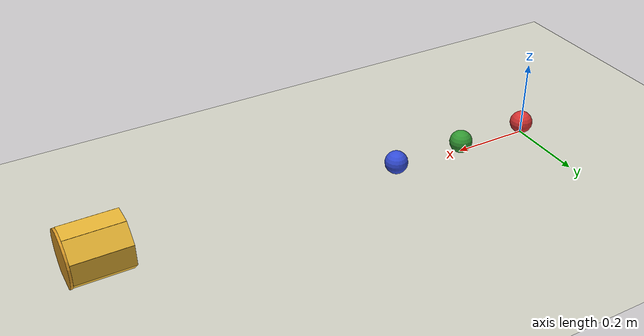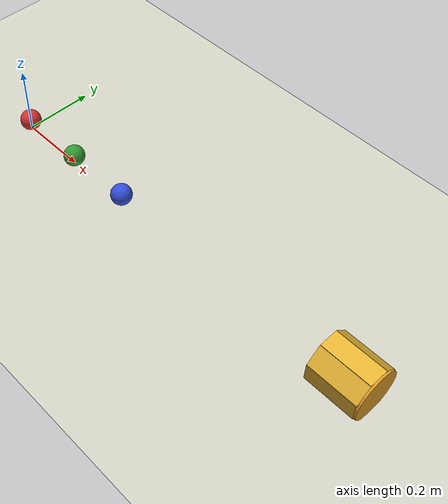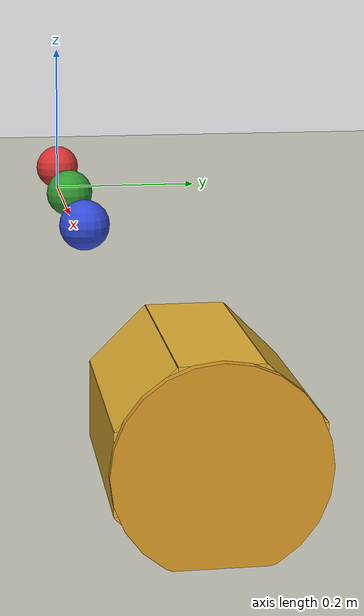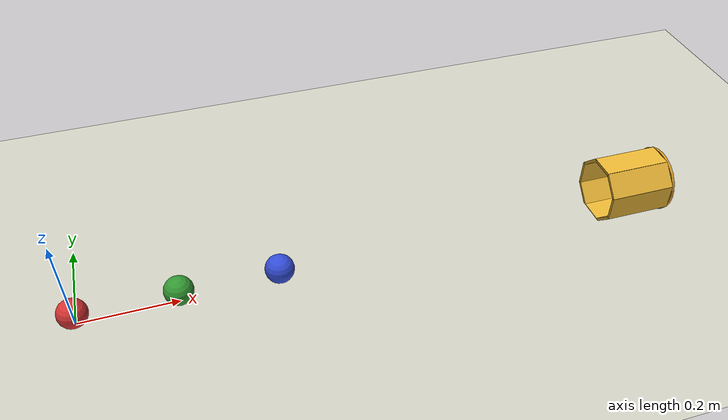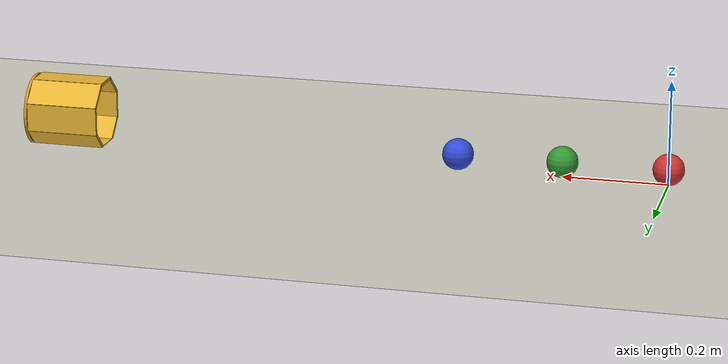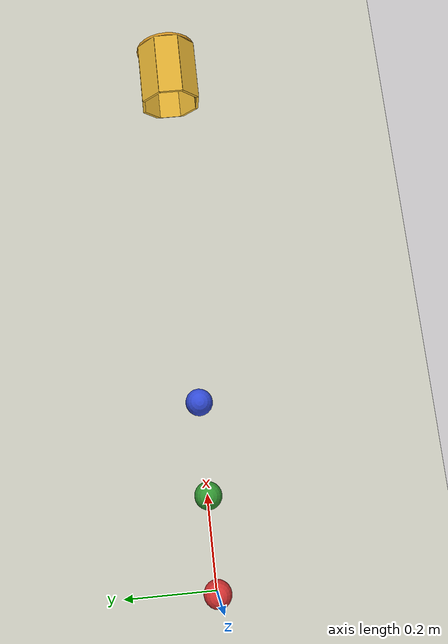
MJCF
<mujoco model="three_ball_relay_into_cup">
  <option timestep="0.002"/>

  <worldbody>
    <light name="sun" pos="0.6 -1 2" dir="0 0.4 -1" diffuse="0.9 0.9 0.9"/>
    <camera name="side" pos="0.6 -1.6 0.6" xyaxes="1 0 0 0 0.35 1"/>

    <geom name="floor" type="plane" size="3 3 0.1" pos="0 0 0" rgba="0.8 0.8 0.75 1" condim="6" friction="1 0.001 0.0006"/>

    <body name="ball1" pos="0 0 0.03">
      <freejoint name="ball1_free"/>
      <geom name="ball1_geom" type="sphere" size="0.03" density="1000" friction="1 0.001 0" rgba="0.85 0.2 0.2 1"/>
    </body>

    <body name="ball2" pos="0.2 0 0.03">
      <freejoint name="ball2_free"/>
      <geom name="ball2_geom" type="sphere" size="0.03" density="1000" friction="1 0.001 0" rgba="0.2 0.6 0.2 1"/>
    </body>

    <body name="ball3" pos="0.4 0 0.03">
      <freejoint name="ball3_free"/>
      <geom name="ball3_geom" type="sphere" size="0.03" density="1000" friction="1 0.001 0" rgba="0.2 0.3 0.85 1"/>
    </body>

    <!-- Cup lying on its side: octagonal shell around the x axis, mouth at x=1.1, closed back at x=1.24, inner bottom flush with floor -->
    <body name="cup" pos="1.17 0 0.06">
      <geom name="cup_bottom" type="box" size="0.07 0.027 0.003" pos="0 0 -0.063" euler="0 0 0" condim="6" friction="1 0.001 0.01" rgba="0.9 0.7 0.2 1"/>
      <geom name="cup_wall_45" type="box" size="0.07 0.027 0.003" pos="0 0.04455 -0.04455" euler="45 0 0" rgba="0.9 0.7 0.2 1"/>
      <geom name="cup_wall_90" type="box" size="0.07 0.027 0.003" pos="0 0.063 0" euler="90 0 0" rgba="0.9 0.7 0.2 1"/>
      <geom name="cup_wall_135" type="box" size="0.07 0.027 0.003" pos="0 0.04455 0.04455" euler="135 0 0" rgba="0.9 0.7 0.2 1"/>
      <geom name="cup_wall_180" type="box" size="0.07 0.027 0.003" pos="0 0 0.063" euler="180 0 0" rgba="0.9 0.7 0.2 1"/>
      <geom name="cup_wall_225" type="box" size="0.07 0.027 0.003" pos="0 -0.04455 0.04455" euler="225 0 0" rgba="0.9 0.7 0.2 1"/>
      <geom name="cup_wall_270" type="box" size="0.07 0.027 0.003" pos="0 -0.063 0" euler="270 0 0" rgba="0.9 0.7 0.2 1"/>
      <geom name="cup_wall_315" type="box" size="0.07 0.027 0.003" pos="0 -0.04455 -0.04455" euler="315 0 0" rgba="0.9 0.7 0.2 1"/>
      <geom name="cup_back" type="cylinder" size="0.069 0.003" pos="0.073 0 0" euler="0 90 0" rgba="0.85 0.6 0.15 1"/>
    </body>
  </worldbody>

  <contact>
    <exclude name="ex12" body1="ball1" body2="ball2"/>
    <exclude name="ex23" body1="ball2" body2="ball3"/>
    <exclude name="ex13" body1="ball1" body2="ball3"/>
    <pair name="pair12" geom1="ball1_geom" geom2="ball2_geom" condim="1" solref="-50000 -1"/>
    <pair name="pair23" geom1="ball2_geom" geom2="ball3_geom" condim="1" solref="-50000 -1"/>
    <pair name="pair13" geom1="ball1_geom" geom2="ball3_geom" condim="1" solref="-50000 -1"/>
  </contact>

  <keyframe>
    <key name="start" qpos="0 0 0.03 1 0 0 0  0.2 0 0.03 1 0 0 0  0.4 0 0.03 1 0 0 0" qvel="1.2 0 0 0 40 0  0 0 0 0 0 0  0 0 0 0 0 0"/>
  </keyframe>
</mujoco>
